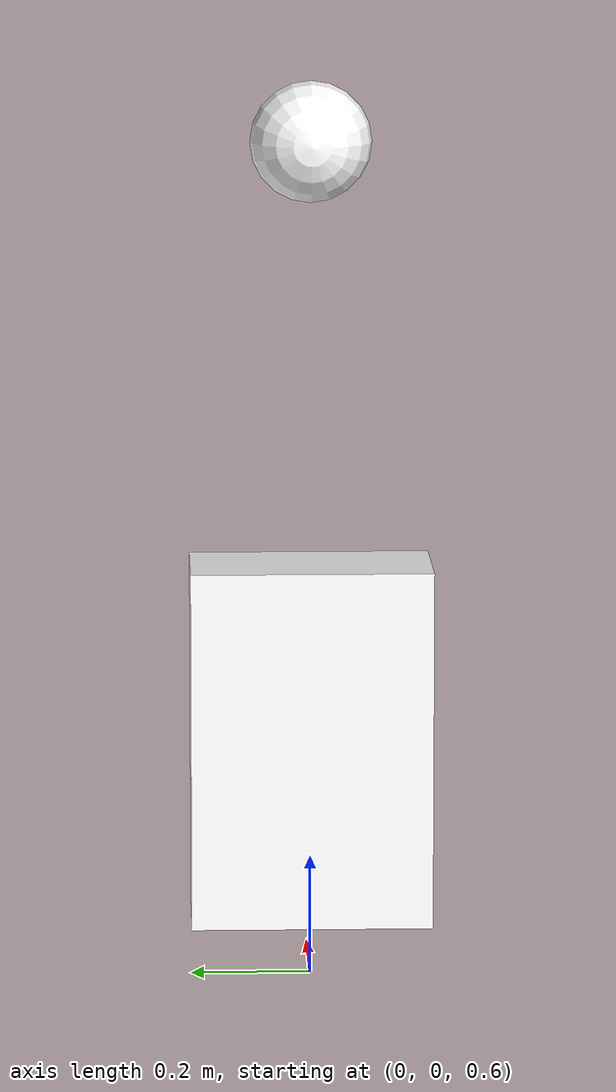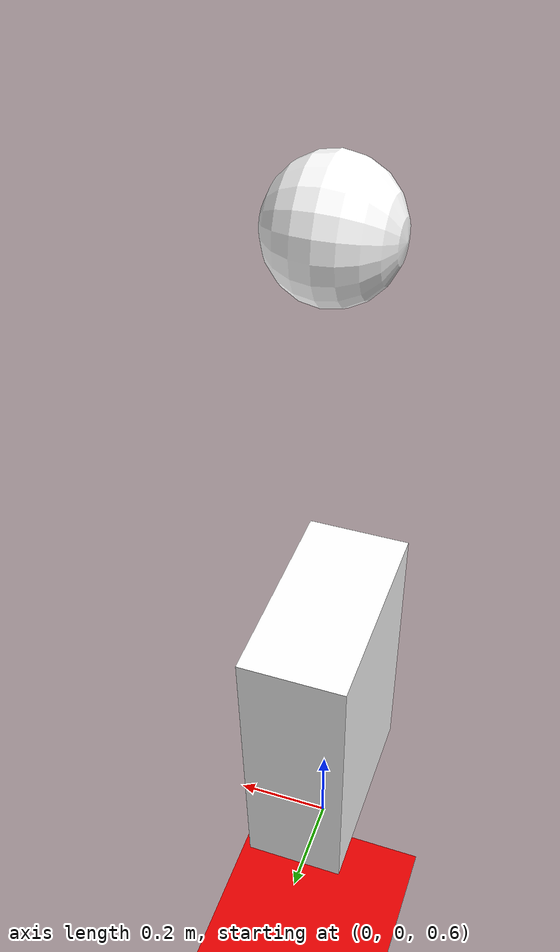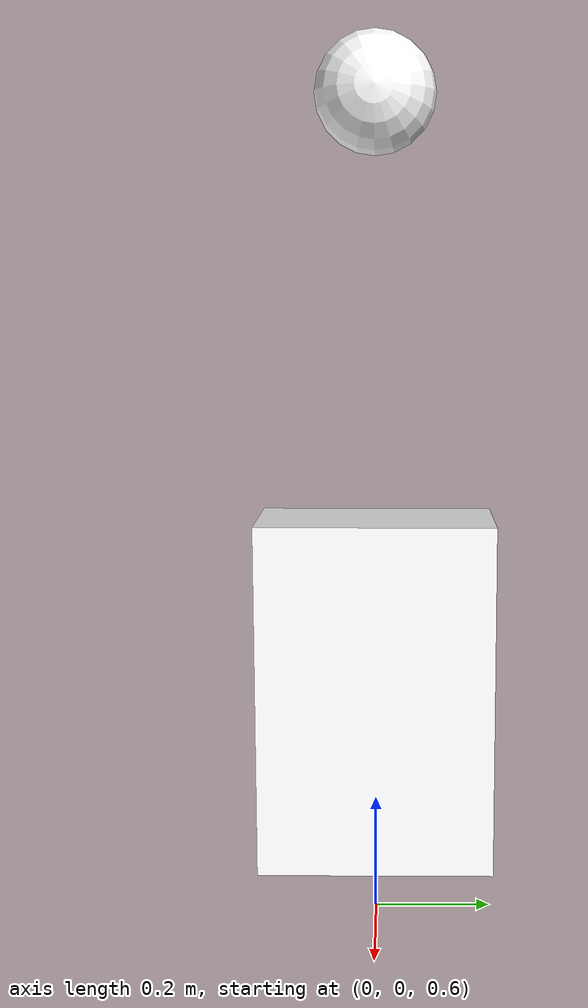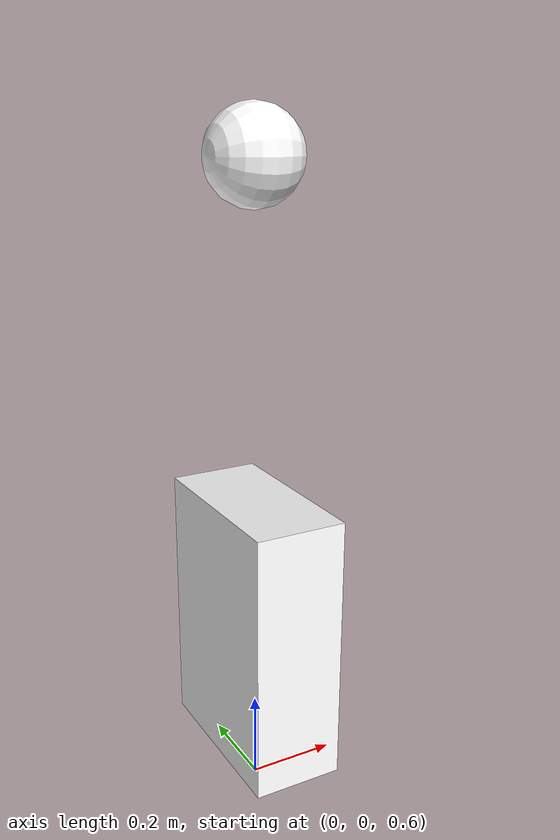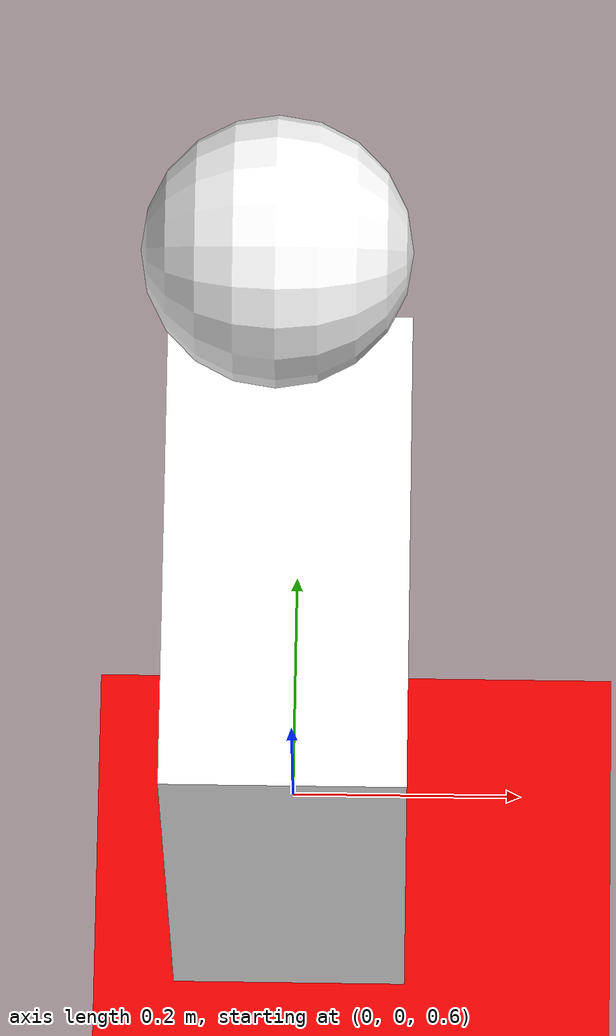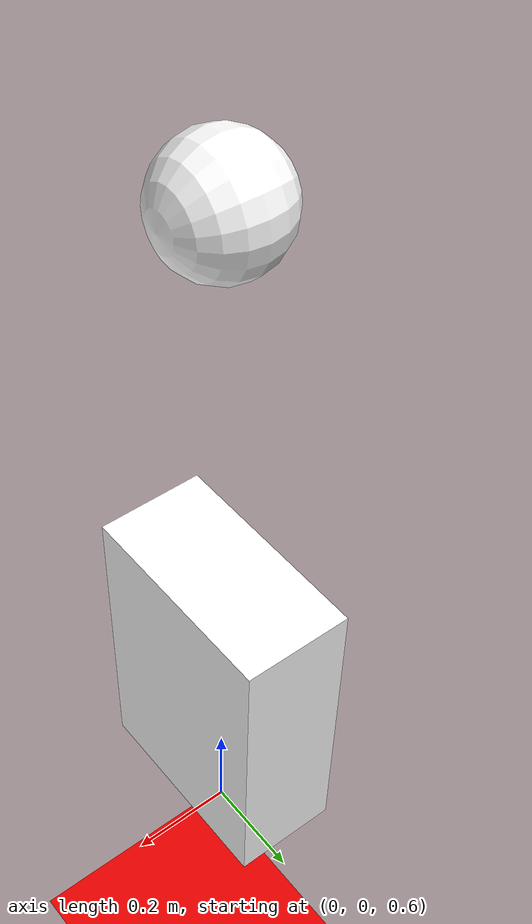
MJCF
<mujoco>
    <compiler angle="radian"/>
    <visual>
        <headlight ambient="0.5 0.5 0.5"/>
    </visual>

    <asset>
        <material name="white" rgba="1 1 1 1"/>
    </asset>

    <option gravity="0 0 -1"/>
    <worldbody>
        <light diffuse=".5 .5 .5" pos="0 0 3" dir="0 0 -1"/>
        <geom type="plane" size="1 1 0.1" rgba=".9 0 0 1"/>
        <body pos="0 0 1" euler="0 0 0">
            <joint type="free"/>
            <inertial pos="0 0 0" mass="1" diaginertia="0.01 0.01 0.01"/>
            <geom type="box" size=".1 .2 .3" material="white"/>
        </body>

        <body pos="0 0 2" euler="0 1.57 0">
            <joint type="free"/>
            <inertial pos="0 0 0" mass="1" diaginertia="0.01 0.01 0.01"/>
            <geom type="sphere" size=".1 .2 .3" material="white"/>
        </body>
    </worldbody>
</mujoco>
